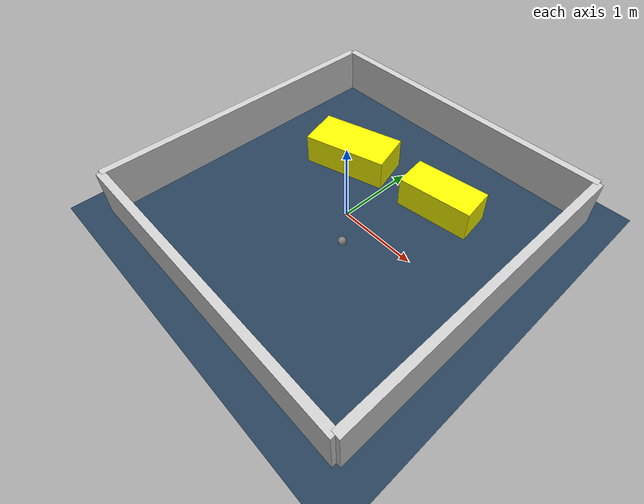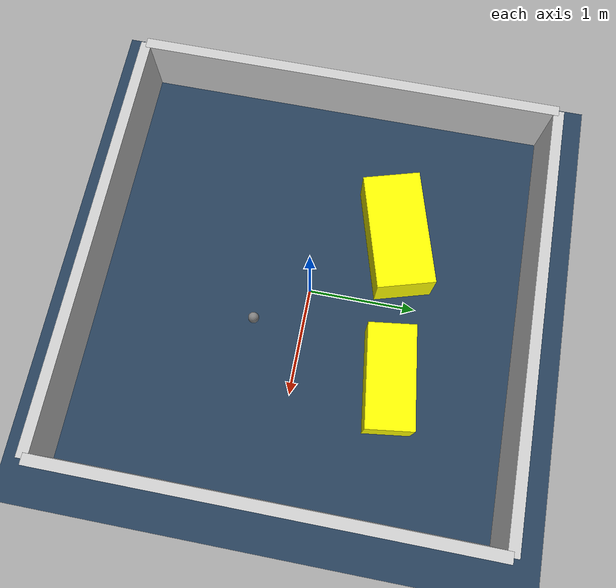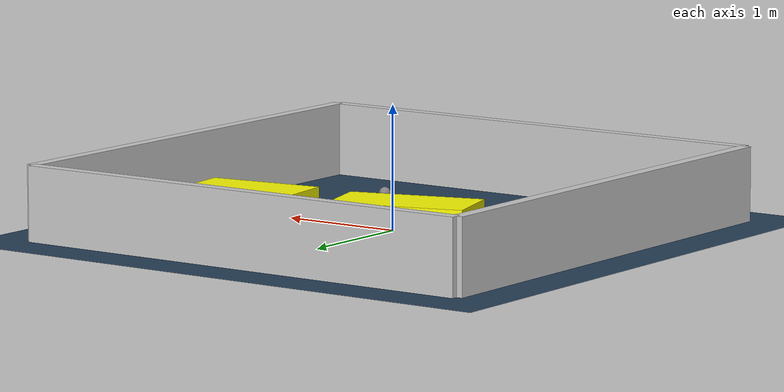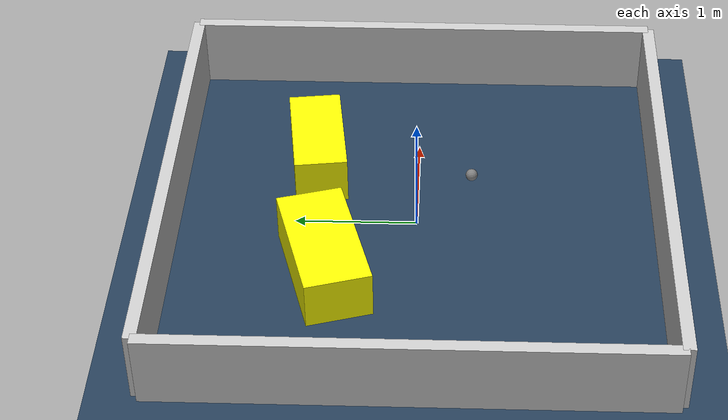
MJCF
<?xml version="1.0" ?>
<mujoco model="generated_environment">
  <option timestep="0.01" integrator="RK4" cone="elliptic"/>
  <default>
    <geom density="1"/>
  </default>
  <asset>
    <texture builtin="gradient" height="3072" rgb1="0.3 0.5 0.7" rgb2="0 0 0" type="skybox" width="512"/>
    <texture builtin="checker" height="300" mark="edge" markrgb="0.8 0.8 0.8" name="groundplane" rgb1="0.2 0.3 0.4" rgb2="0.1 0.2 0.3" type="2d" width="300"/>
    <material name="groundplane" reflectance="0.2" texrepeat="5 5" texture="groundplane" texuniform="true"/>
    <material name="robot" rgba="0.0 1.0 0.0 1"/>
  </asset>
  <worldbody>
    <light dir="0 0 -1" directional="true" pos="0 0 1.5"/>
    <geom condim="4" friction="1.0 0.005 0.001" material="groundplane" name="floor" size="0 0 0.05" type="plane"/>
    <body name="walls">
      <geom name="wall_1" condim="4" pos="-2.0 0.0 0.3" rgba="0.800000011920929 0.800000011920929 0.800000011920929 1.0" size="0.05 2.0 0.3" type="box"/>
      <geom name="wall_2" condim="4" pos="2.0 0.0 0.3" rgba="0.800000011920929 0.800000011920929 0.800000011920929 1.0" size="0.05 2.0 0.3" type="box"/>
      <geom name="wall_3" condim="4" pos="0.0 -2.0 0.3" rgba="0.800000011920929 0.800000011920929 0.800000011920929 1.0" size="2.0 0.05 0.3" type="box"/>
      <geom name="wall_4" condim="4" pos="0.0 2.0 0.3" rgba="0.800000011920929 0.800000011920929 0.800000011920929 1.0" size="2.0 0.05 0.3" type="box"/>
    </body>
    <body name="robot">
      <joint name="joint_x" type="slide" pos="0 0 0" axis="1 0 0"/>
      <joint name="joint_y" type="slide" pos="0 0 0" axis="0 1 0"/>
      <geom name="robot" type="sphere" pos="0.40014686740202166 -0.44801386350144456 0.2" size="0.05" mass="5." friction="1.0 0.005 0.0001" condim="4"/>
      <site name="sensor_ball"/>
    </body>
    <body name="obstacle_1_movable">
      <geom name="obstacle_1_movable" condim="4" pos="0.7284841724749211 0.8573230344265754 0.2" euler="0 0 277.45602973725784" friction="1.0 0.005 0.001" rgba="1 1 0 1" size="0.21760600237083838 0.46843414673774403 0.2" type="box" mass="0.1"/>
      <joint type="free"/>
    </body>
    <body name="obstacle_2_movable">
      <geom name="obstacle_2_movable" condim="4" pos="-0.63229432620449 0.7143214289002753 0.2" euler="0 0 106.31961409960165" friction="1.0 0.005 0.001" rgba="1 1 0 1" size="0.2680288927143789 0.5442314509268321 0.2" type="box" mass="0.1"/>
      <joint type="free"/>
    </body>
  </worldbody>
  <actuator>
    <motor name="actuator_x" joint="joint_x" gear="1" ctrlrange="-1 1"/>
    <motor name="actuator_y" joint="joint_y" gear="1" ctrlrange="-1 1"/>
  </actuator>
</mujoco>
